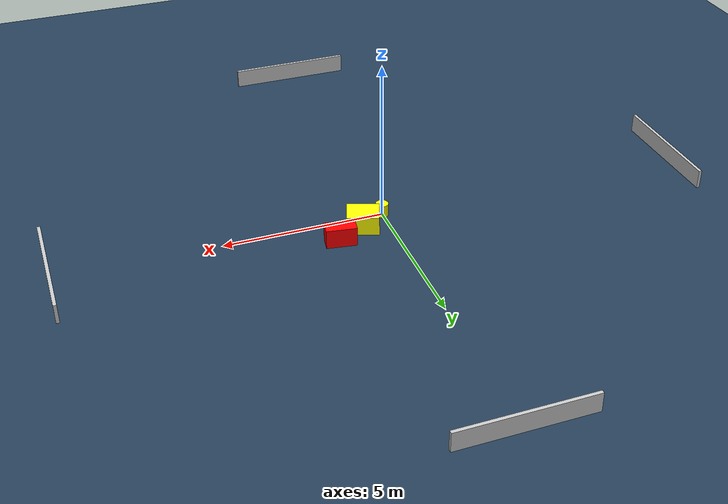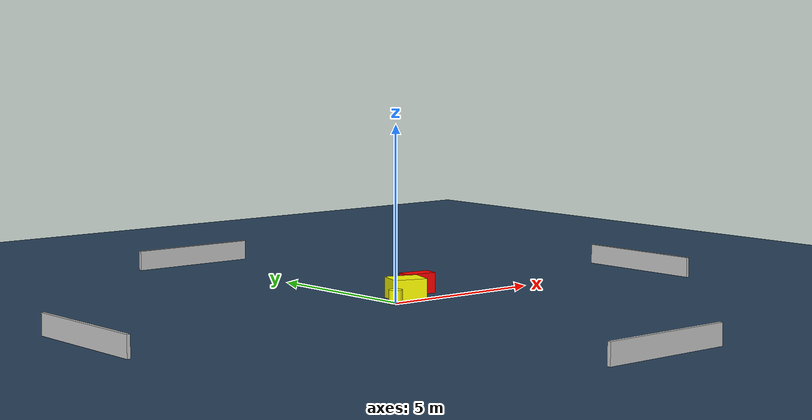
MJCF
<?xml version="1.0" ?>
<mujoco model="generated_environment">
  <option timestep="0.01" integrator="RK4" cone="elliptic"/>
  <default>
    <geom density="1"/>
  </default>
  <asset>
    <texture builtin="gradient" height="3072" name="skybox" rgb1="0.3 0.5 0.7" rgb2="0 0 0" type="skybox" width="512"/>
    <texture builtin="checker" height="300" name="groundplane" rgb1="0.2 0.3 0.4" rgb2="0.1 0.2 0.3" type="2d" width="300"/>
    <material name="groundplane" reflectance="0.2" texrepeat="5 5" texture="groundplane"/>
  </asset>
  <worldbody>
    <light dir="0 0 -1" directional="true" pos="0 0 1.5"/>
    <geom condim="3" friction="0.5 0.005 0.001" material="groundplane" name="floor" pos="0 0 0" size="0 0 0.05" type="plane"/>
    <body name="walls">
      <geom name="wall_1" condim="4" pos="-10.0 0.0 0.3" rgba="0.800000011920929 0.800000011920929 0.800000011920929 1.0" size="0.05 2.0 0.3" type="box"/>
      <geom name="wall_2" condim="4" pos="10.0 0.0 0.3" rgba="0.800000011920929 0.800000011920929 0.800000011920929 1.0" size="0.05 2.0 0.3" type="box"/>
      <geom name="wall_3" condim="4" pos="0.0 -10.0 0.3" rgba="0.800000011920929 0.800000011920929 0.800000011920929 1.0" size="2.0 0.05 0.3" type="box"/>
      <geom name="wall_4" condim="4" pos="0.0 10.0 0.3" rgba="0.800000011920929 0.800000011920929 0.800000011920929 1.0" size="2.0 0.05 0.3" type="box"/>
    </body>
    <body name="robot">
      <joint name="joint_x" type="slide" pos="0 0 0" axis="1 0 0"/>
      <joint name="joint_y" type="slide" pos="0 0 0" axis="0 1 0"/>
      <geom name="robot" type="cylinder" pos="0.0 0.0 0.2" size="0.2 0.2 0.0" mass="5.0" friction="1.0 0.005 0.0001" condim="4" rgba="1.0 1.0 0.0 1.0"/>
    </body>
    <body name="obstacle_1_movable">
      <geom name="obstacle_1_movable" condim="4" pos="0.7909974092272999 0.4864467312721463 0.3" euler="0 0 250.87759379987628" friction="0.0 0.005 0.001" rgba="1.0 1.0 0.0 1.0" size="0.40252641167503367 0.4929752014081171 0.3" type="box" mass="0.1"/>
      <joint type="free"/>
    </body>
    <body name="obstacle_2_static">
      <geom name="obstacle_2_static" condim="4" pos="1.6683476294342465 1.0072776883377468 0.3" euler="0 0 261.0999958202451" friction="0.0 0.005 0.001" rgba="1.0 0.0 0.0 1.0" size="0.23339952679361092 0.46576598672102026 0.3" type="box"/>
    </body>
  </worldbody>
  <actuator>
    <motor name="actuator_x" joint="joint_x" gear="1" ctrlrange="-1 1"/>
    <motor name="actuator_y" joint="joint_y" gear="1" ctrlrange="-1 1"/>
  </actuator>
</mujoco>
